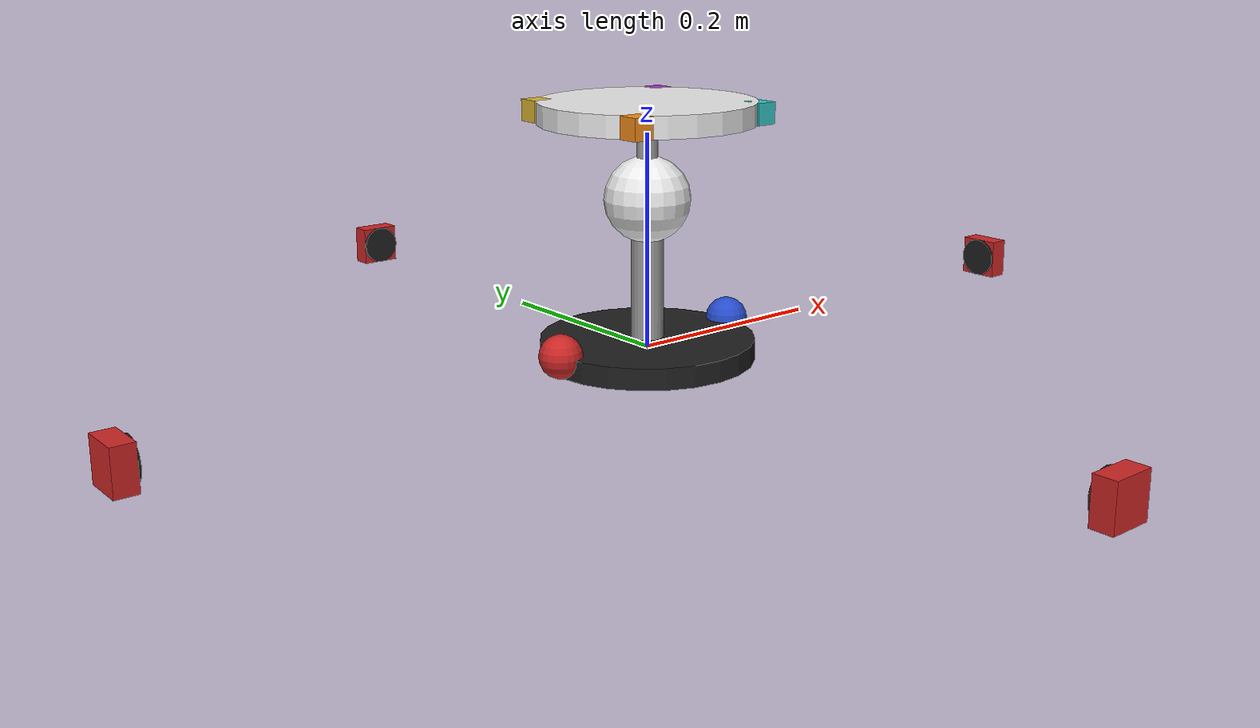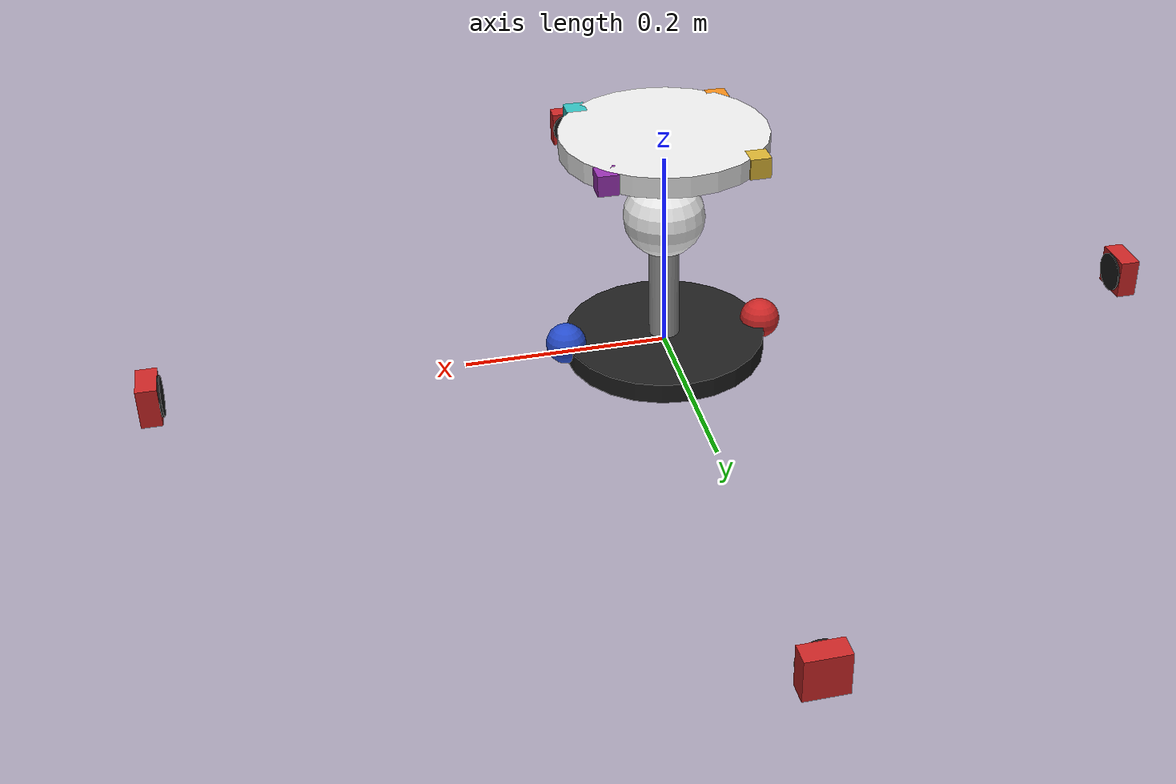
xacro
<?xml version="1.0" ?>

<robot name="cable_joint" xmlns:xacro="https://www.ros.org/wiki/xacro" >

    <!-- Constants for robot dimensions -->
    <xacro:property name="PI" value="3.1415926535897931"/>
    <xacro:property name="EPSILON" value="1e-8"/>
    <!-- properties of link_base -->
    <xacro:property name="R_BASE" value="0.1"/>
    <xacro:property name="L_BASE" value="0.02"/>
    <xacro:property name="M_BASE" value="10"/>
    <!-- properties of link_camera_body -->
    <xacro:property name="L_CAMBODY" value="0.02"/>
    <xacro:property name="M_CAMBODY" value="0.1"/>
    <!-- properties of link_lens_body -->
    <xacro:property name="R_LENS" value="0.02"/>
    <xacro:property name="L_LENS" value="0.002"/>
    <xacro:property name="M_LENS" value="0.01"/>
    <!-- properties of link_pin's -->
    <xacro:property name="R_PIN" value="0.02"/>
    <xacro:property name="M_PIN" value="1"/>
    <!-- properties of link_lowerSupport -->
    <xacro:property name="R_LOWSUPPORT" value="0.015"/>
    <xacro:property name="L_LOWSUPPORT" value="0.14"/>
    <xacro:property name="M_LOWSUPPORT" value="1"/>
    <!-- properties of link_hiddenLink -->
    <xacro:property name="R_HIDLINK" value="0.000001"/>
    <xacro:property name="L_HIDLINK" value="0.000004"/>
    <xacro:property name="M_HIDLINK" value="0.00001"/>
    <!-- properties of link_ball -->
    <xacro:property name="R_BALL" value="0.04"/>
    <xacro:property name="M_BALL" value="1"/>
    <!-- properties of link_upperSupport -->
    <xacro:property name="R_UPPSUPPORT" value="0.01"/>
    <xacro:property name="L_UPPSUPPORT" value="0.08"/>
    <xacro:property name="M_UPPSUPPORT" value="0.1"/>
    <!-- properties of link_disc -->
    <xacro:property name="R_DISC" value="0.1"/>
    <xacro:property name="L_DISC" value="0.02"/>
    <xacro:property name="M_DISC" value="0.1"/>
    <!-- properties of link_cube's -->
    <xacro:property name="L_CUBE" value="0.02"/>
    <xacro:property name="M_CUBE" value="0.001"/>

    <!-- Import all Gazebo-customization elements, including Gazebo colors -->
    <xacro:include filename="$(find cable_joint_description)/urdf/cable_joint.gazebo" />
    <!-- Import Rviz colors -->
    <xacro:include filename="$(find cable_joint_description)/urdf/materials.xacro" />

    <!-- Used for fixing robot to Gazebo 'base_link' -->
    <link name="world"/>

    <joint name="joint_world_base" type="fixed">
        <parent link="world"/>
        <child link="link_base"/>
    </joint>

    <link name="link_base">
        <visual>
            <origin rpy="0 0 0" xyz="0 0 0"/>
            <geometry>
                <cylinder length="${L_BASE}" radius="${R_BASE}"/>
            </geometry>
        <material name="black"/>
        </visual>
        <collision>
            <origin rpy="0 0 0" xyz="0 0 0"/>
            <geometry>
                <cylinder length="${L_BASE}" radius="${R_BASE}"/>
            </geometry>
        </collision>
        <inertial>
            <mass value="1000"/>
            <origin rpy="0 0 0" xyz="0 0 0"/>
            <inertia ixx="${1/12*M_BASE*(3*R_BASE*R_BASE+L_BASE*L_BASE)}" ixy="0" ixz="0" iyy="${1/12*M_BASE*(3*R_BASE*R_BASE+L_BASE*L_BASE)}" iyz="0" izz="${1/2*M_BASE*R_BASE*R_BASE}"/>
        </inertial>
    </link>

    <joint name="joint_world_soucambody" type="revolute">
        <origin rpy="0 0 0" xyz="0 -0.5 ${L_CAMBODY/2}"/>
        <parent link="world"/>
        <child link="link_southCameraBody"/>
        <limit effort="0" lower="0" upper="0" velocity="0"/>
        <axis rpy="0 0 0" xyz="0 0 1"/>
    </joint>

    <link name="link_southCameraBody">
        <visual>
            <origin rpy="0 0 0" xyz="0 0 0"/>
            <geometry>
                <box size="${L_CAMBODY*2} ${L_CAMBODY} ${L_CAMBODY*2}"/>
            </geometry>
            <material name="red"/>
        </visual>
        <collision>
            <origin rpy="0 0 0" xyz="0 0 0"/>
            <geometry>
                <box size="${L_CAMBODY*2} ${L_CAMBODY} ${L_CAMBODY*2}"/>
            </geometry>
        </collision>
        <inertial>
            <mass value="${M_CAMBODY}"/>
            <origin rpy="0 0 0" xyz="0 0 0"/>
            <inertia ixx="${1/12*M_CAMBODY*(L_CAMBODY*L_CAMBODY+L_CAMBODY*L_CAMBODY*4)}" ixy="0" ixz="0" iyy="${1/12*M_CAMBODY*(L_CAMBODY*L_CAMBODY*4+L_CAMBODY*L_CAMBODY*4)}" iyz="0" izz="${1/12*M_CAMBODY*(L_CAMBODY*L_CAMBODY*4+L_CAMBODY*L_CAMBODY)}"/>
        </inertial>
    </link>

    <joint name="joint_soucambody_soulens" type="revolute">
        <origin rpy="0 0 0" xyz="0 ${L_CAMBODY/2+L_LENS/2} 0"/>
        <parent link="link_southCameraBody"/>
        <child link="link_southLens"/>
        <limit effort="0" lower="0" upper="0" velocity="0"/>
        <axis rpy="0 0 0" xyz="0 0 1"/>
    </joint>

    <link name="link_southLens">
        <visual>
            <origin rpy="${PI/2} 0 0" xyz="0 0 0"/>
            <geometry>
                <cylinder length="${L_LENS}" radius="${R_LENS}"/>
            </geometry>
            <material name="black"/>
        </visual>
        <collision>
            <origin rpy="${PI/2} 0 0" xyz="0 0 0"/>
            <geometry>
                <cylinder length="${L_LENS}" radius="${R_LENS}"/>
            </geometry>
        </collision>
        <inertial>
            <mass value="${M_LENS}"/>
            <origin rpy="${PI/2} 0 0" xyz="0 0 0"/>
            <inertia ixx="${1/12*M_LENS*(3*R_LENS*R_LENS+L_LENS*L_LENS)}" ixy="0" ixz="0" iyy="${1/12*M_LENS*(3*R_LENS*R_LENS+L_LENS*L_LENS)}" iyz="0" izz="${1/2*M_LENS*R_LENS*R_LENS}"/>
        </inertial>
    </link>
    <!-- rotate optical link, x axis should be pointing to the view-->
    <joint name="joint_soulens_souopt" type="fixed">
      <origin xyz="0 0 0" rpy="0 0 ${PI/2}"/>
      <parent link="link_southLens"/>
      <child link="link_southOptical"/>
    </joint>
    <link name="link_southOptical">
    </link>

    <joint name="joint_world_wescambody" type="revolute">
        <origin rpy="0 0 0" xyz="-0.5 0 ${L_CAMBODY/2}"/>
        <parent link="world"/>
        <child link="link_westCameraBody"/>
        <limit effort="0" lower="0" upper="0" velocity="0"/>
        <axis rpy="0 0 0" xyz="0 0 1"/>
    </joint>

    <link name="link_westCameraBody">
        <visual>
            <origin rpy="0 0 0" xyz="0 0 0"/>
            <geometry>
                <box size="${L_CAMBODY} ${L_CAMBODY*2} ${L_CAMBODY*2}"/>
            </geometry>
            <material name="red"/>
        </visual>
        <collision>
            <origin rpy="0 0 0" xyz="0 0 0"/>
            <geometry>
                <box size="${L_CAMBODY} ${L_CAMBODY*2} ${L_CAMBODY*2}"/>
            </geometry>
        </collision>
        <inertial>
            <mass value="${M_CAMBODY}"/>
            <origin rpy="0 0 0" xyz="0 0 0"/>
            <inertia ixx="${1/12*M_CAMBODY*(L_CAMBODY*L_CAMBODY*4+L_CAMBODY*L_CAMBODY*4)}" ixy="0" ixz="0" iyy="${1/12*M_CAMBODY*(L_CAMBODY*L_CAMBODY+L_CAMBODY*L_CAMBODY*4)}" iyz="0" izz="${1/12*M_CAMBODY*(L_CAMBODY*L_CAMBODY*4+L_CAMBODY*L_CAMBODY)}"/>
        </inertial>
    </link>

    <joint name="joint_wescambody_weslens" type="revolute">
        <origin rpy="0 0 0" xyz="${L_CAMBODY/2+L_LENS/2} 0 0"/>
        <parent link="link_westCameraBody"/>
        <child link="link_westLens"/>
        <limit effort="0" lower="0" upper="0" velocity="0"/>
        <axis rpy="0 0 0" xyz="0 0 1"/>
    </joint>

    <link name="link_westLens">
        <visual>
            <origin rpy="0 ${PI/2} 0" xyz="0 0 0"/>
            <geometry>
                <cylinder length="${L_LENS}" radius="${R_LENS}"/>
            </geometry>
            <material name="black"/>
        </visual>
        <collision>
            <origin rpy="0 ${PI/2} 0" xyz="0 0 0"/>
            <geometry>
                <cylinder length="${L_LENS}" radius="${R_LENS}"/>
            </geometry>
        </collision>
        <inertial>
            <mass value="${M_LENS}"/>
            <origin rpy="0 ${PI/2} 0" xyz="0 0 0"/>
            <inertia ixx="${1/12*M_LENS*(3*R_LENS*R_LENS+L_LENS*L_LENS)}" ixy="0" ixz="0" iyy="${1/12*M_LENS*(3*R_LENS*R_LENS+L_LENS*L_LENS)}" iyz="0" izz="${1/2*M_LENS*R_LENS*R_LENS}"/>
        </inertial>
    </link>
    <!-- rotate west optical link, x axis should be pointing to the view-->
    <joint name="joint_weslens_wesopt" type="fixed">
      <origin xyz="0 0 0" rpy="0 0 0"/>
      <parent link="link_westLens"/>
      <child link="link_westOptical"/>
    </joint>
    <link name="link_westOptical">
    </link>

    <joint name="joint_world_norcambody" type="revolute">
        <origin rpy="0 0 0" xyz="0 0.5 ${L_CAMBODY/2}"/>
        <parent link="world"/>
        <child link="link_northCameraBody"/>
        <limit effort="0" lower="0" upper="0" velocity="0"/>
        <axis rpy="0 0 0" xyz="0 0 1"/>
    </joint>

    <link name="link_northCameraBody">
        <visual>
            <origin rpy="0 0 0" xyz="0 0 0"/>
            <geometry>
                <box size="${L_CAMBODY*2} ${L_CAMBODY} ${L_CAMBODY*2}"/>
            </geometry>
            <material name="red"/>
        </visual>
        <collision>
            <origin rpy="0 0 0" xyz="0 0 0"/>
            <geometry>
                <box size="${L_CAMBODY*2} ${L_CAMBODY} ${L_CAMBODY*2}"/>
            </geometry>
        </collision>
        <inertial>
            <mass value="${M_CAMBODY}"/>
            <origin rpy="0 0 0" xyz="0 0 0"/>
            <inertia ixx="${1/12*M_CAMBODY*(L_CAMBODY*L_CAMBODY+L_CAMBODY*L_CAMBODY*4)}" ixy="0" ixz="0" iyy="${1/12*M_CAMBODY*(L_CAMBODY*L_CAMBODY*4+L_CAMBODY*L_CAMBODY*4)}" iyz="0" izz="${1/12*M_CAMBODY*(L_CAMBODY*L_CAMBODY*4+L_CAMBODY*L_CAMBODY)}"/>
        </inertial>
    </link>

    <joint name="joint_norcambody_norlens" type="revolute">
        <origin rpy="0 0 0" xyz="0 -${L_CAMBODY/2+L_LENS/2} 0"/>
        <parent link="link_northCameraBody"/>
        <child link="link_northLens"/>
        <limit effort="0" lower="0" upper="0" velocity="0"/>
        <axis rpy="0 0 0" xyz="0 0 1"/>
    </joint>

    <link name="link_northLens">
        <visual>
            <origin rpy="${PI/2} 0 0" xyz="0 0 0"/>
            <geometry>
                <cylinder length="${L_LENS}" radius="${R_LENS}"/>
            </geometry>
            <material name="black"/>
        </visual>
        <collision>
            <origin rpy="${PI/2} 0 0" xyz="0 0 0"/>
            <geometry>
                <cylinder length="${L_LENS}" radius="${R_LENS}"/>
            </geometry>
        </collision>
        <inertial>
            <mass value="${M_LENS}"/>
            <origin rpy="${PI/2} 0 0" xyz="0 0 0"/>
            <inertia ixx="${1/12*M_LENS*(3*R_LENS*R_LENS+L_LENS*L_LENS)}" ixy="0" ixz="0" iyy="${1/12*M_LENS*(3*R_LENS*R_LENS+L_LENS*L_LENS)}" iyz="0" izz="${1/2*M_LENS*R_LENS*R_LENS}"/>
        </inertial>
    </link>
    <!-- rotate optical link, x axis should be pointing to the view-->
    <joint name="joint_norlens_noropt" type="fixed">
      <origin xyz="0 0 0" rpy="0 0 -${PI/2}"/>
      <parent link="link_northLens"/>
      <child link="link_northOptical"/>
    </joint>
    <link name="link_northOptical">
    </link>

    <joint name="joint_world_eascambody" type="revolute">
        <origin rpy="0 0 0" xyz="0.5 0 ${L_CAMBODY/2}"/>
        <parent link="world"/>
        <child link="link_eastCameraBody"/>
        <limit effort="0" lower="0" upper="0" velocity="0"/>
        <axis rpy="0 0 0" xyz="0 0 1"/>
    </joint>

    <link name="link_eastCameraBody">
        <visual>
            <origin rpy="0 0 0" xyz="0 0 0"/>
            <geometry>
                <box size="${L_CAMBODY} ${L_CAMBODY*2} ${L_CAMBODY*2}"/>
            </geometry>
            <material name="red"/>
        </visual>
        <collision>
            <origin rpy="0 0 0" xyz="0 0 0"/>
            <geometry>
                <box size="${L_CAMBODY} ${L_CAMBODY*2} ${L_CAMBODY*2}"/>
            </geometry>
        </collision>
        <inertial>
            <mass value="${M_CAMBODY}"/>
            <origin rpy="0 0 0" xyz="0 0 0"/>
            <inertia ixx="${1/12*M_CAMBODY*(L_CAMBODY*L_CAMBODY*4+L_CAMBODY*L_CAMBODY*4)}" ixy="0" ixz="0" iyy="${1/12*M_CAMBODY*(L_CAMBODY*L_CAMBODY+L_CAMBODY*L_CAMBODY*4)}" iyz="0" izz="${1/12*M_CAMBODY*(L_CAMBODY*L_CAMBODY*4+L_CAMBODY*L_CAMBODY)}"/>
        </inertial>
    </link>

    <joint name="joint_eascambody_easlens" type="revolute">
        <origin rpy="0 0 0" xyz="-${L_CAMBODY/2+L_LENS/2} 0 0"/>
        <parent link="link_eastCameraBody"/>
        <child link="link_eastLens"/>
        <limit effort="0" lower="0" upper="0" velocity="0"/>
        <axis rpy="0 0 0" xyz="0 0 1"/>
    </joint>

    <link name="link_eastLens">
        <visual>
            <origin rpy="0 ${PI/2} 0" xyz="0 0 0"/>
            <geometry>
                <cylinder length="${L_LENS}" radius="${R_LENS}"/>
            </geometry>
            <material name="black"/>
        </visual>
        <collision>
            <origin rpy="0 ${PI/2} 0" xyz="0 0 0"/>
            <geometry>
                <cylinder length="${L_LENS}" radius="${R_LENS}"/>
            </geometry>
        </collision>
        <inertial>
            <mass value="${M_LENS}"/>
            <origin rpy="0 ${PI/2} 0" xyz="0 0 0"/>
            <inertia ixx="${1/12*M_LENS*(3*R_LENS*R_LENS+L_LENS*L_LENS)}" ixy="0" ixz="0" iyy="${1/12*M_LENS*(3*R_LENS*R_LENS+L_LENS*L_LENS)}" iyz="0" izz="${1/2*M_LENS*R_LENS*R_LENS}"/>
        </inertial>
    </link>
    <!-- rotate east optical link, x axis should be pointing to the view-->
    <joint name="joint_easlens_easopt" type="fixed">
      <origin xyz="0 0 0" rpy="0 0 ${PI}"/>
      <parent link="link_eastLens"/>
      <child link="link_eastOptical"/>
    </joint>
    <link name="link_eastOptical">
    </link>

    <joint name="joint_base_eastpin" type="revolute">
        <parent link="link_base"/>
        <child link="link_eastPin"/>
        <origin rpy="0 0 0" xyz="${R_BASE} 0 ${L_BASE/2}"/>
        <limit effort="0" lower="0" upper="0" velocity="0"/>
        <axis rpy="0 0 0" xyz="0 0 1"/>
    </joint>

    <link name="link_eastPin">
        <visual>
            <origin rpy="0 0 0" xyz="0 0 0"/>
            <geometry>
                <sphere radius="${R_PIN}"/>
            </geometry>
            <material name="blue"/>
        </visual>
        <collision>
            <origin rpy="0 0 0" xyz="0 0 0"/>
            <geometry>
                <sphere radius="${R_PIN}"/>
            </geometry>
        </collision>
        <inertial>
            <mass value="${M_PIN}"/>
            <origin rpy="0 0 0" xyz="0 0 0"/>
            <inertia ixx="${2/5*M_PIN*R_PIN*R_PIN}" ixy="0" ixz="0" iyy="${2/5*M_PIN*R_PIN*R_PIN}" iyz="0" izz="${2/5*M_PIN*R_PIN*R_PIN}"/>
        </inertial>
    </link>

    <joint name="joint_base_westpin" type="revolute">
        <parent link="link_base"/>
        <child link="link_westPin"/>
        <origin rpy="0 0 0" xyz="${-R_BASE} 0 ${L_BASE/2}"/>
        <limit effort="0" lower="0" upper="0" velocity="0"/>
        <axis rpy="0 0 0" xyz="0 0 1"/>
    </joint>

    <link name="link_westPin">
        <visual>
            <origin rpy="0 0 0" xyz="0 0 0"/>
            <geometry>
                <sphere radius="${R_PIN}"/>
            </geometry>
            <material name="red"/>
        </visual>
        <collision>
            <origin rpy="0 0 0" xyz="0 0 0"/>
            <geometry>
                <sphere radius="${R_PIN}"/>
            </geometry>
        </collision>
        <inertial>
            <mass value="${M_PIN}"/>
            <origin rpy="0 0 0" xyz="0 0 0"/>
            <inertia ixx="${2/5*M_PIN*R_PIN*R_PIN}" ixy="0" ixz="0" iyy="${2/5*M_PIN*R_PIN*R_PIN}" iyz="0" izz="${2/5*M_PIN*R_PIN*R_PIN}"/>
        </inertial>
    </link>

    <joint name="joint_base_lowersupport" type="revolute">
        <origin rpy="0 0 0" xyz="0 0 0"/>
        <limit effort="0" lower="0" upper="0" velocity="0"/>
        <axis rpy="0 0 0" xyz="0 0 1"/>
        <parent link="link_base"/>
        <child link="link_lowerSupport"/>
        <origin rpy="0 0 0" xyz="0 0 0.01"/>
    </joint>

    <link name="link_lowerSupport">
        <visual>
            <origin rpy="0 0 0" xyz="0 0 0.07"/>
            <geometry>
                <cylinder length="${L_LOWSUPPORT}" radius="${R_LOWSUPPORT}"/>
            </geometry>
            <material name="grey"/>
        </visual>
        <collision>
            <origin rpy="0 0 0" xyz="0 0 0.07"/>
            <geometry>
                <cylinder length="${L_LOWSUPPORT}" radius="${R_LOWSUPPORT}"/>
            </geometry>
        </collision>
        <inertial>
            <mass value="${M_LOWSUPPORT}"/>
            <origin rpy="0 0 0" xyz="0 0 0"/>
            <inertia ixx="${1/12*M_LOWSUPPORT*(3*R_LOWSUPPORT*R_LOWSUPPORT+L_LOWSUPPORT*L_LOWSUPPORT)}" ixy="0" ixz="0" iyy="${1/12*M_LOWSUPPORT*(3*R_LOWSUPPORT*R_LOWSUPPORT+L_LOWSUPPORT*L_LOWSUPPORT)}" iyz="0" izz="${1/2*M_LOWSUPPORT*R_LOWSUPPORT*R_LOWSUPPORT}"/>
        </inertial>
    </link>

    <joint name="joint_lowersupport_hiddenlinkroll" type="revolute">
        <parent link="link_lowerSupport"/>
        <child link="link_hiddenLinkRoll"/>
        <origin rpy="0 0 0" xyz="0 0 ${L_LOWSUPPORT}"/>
        <axis xyz="1 0 0"/>
        <limit effort="10" velocity="${PI*2}" lower="${-PI+EPSILON}" upper="${PI-EPSILON}"/>
    </joint>

    <link name="link_hiddenLinkRoll">
        <visual>
            <origin rpy="${PI/2} 0 0" xyz="0 0 0"/>
            <geometry>
                <cylinder length="${L_HIDLINK}" radius="${R_HIDLINK}"/>
            </geometry>
            <material name="white"/>
        </visual>
        <collision>
            <origin rpy="${PI/2} 0 0" xyz="0 0 0"/>
            <geometry>
                <cylinder length="${L_HIDLINK}" radius="${R_HIDLINK}"/>
            </geometry>
        </collision>
        <inertial>
            <mass value="${M_HIDLINK}"/>
            <origin rpy="${PI/2} 0 0" xyz="0 0 0"/>
            <inertia ixx="${1/12*M_HIDLINK*(3*R_HIDLINK*R_HIDLINK+L_HIDLINK*L_HIDLINK)}" ixy="0" ixz="0" iyy="${1/12*M_HIDLINK*(3*R_HIDLINK*R_HIDLINK+L_HIDLINK*L_HIDLINK)}" iyz="0" izz="${1/2*M_HIDLINK*R_HIDLINK*R_HIDLINK}"/>
        </inertial>
    </link>

    <joint name="joint_hiddenlinkroll_hiddenlinkpitch" type="revolute">
        <parent link="link_hiddenLinkRoll"/>
        <child link="link_hiddenLinkPitch"/>
        <origin rpy="0 0 0" xyz="0 0 ${R_HIDLINK}"/>
        <axis xyz="0 1 0"/>
        <limit effort="10" velocity="${PI*2}" lower="${-PI+EPSILON}" upper="${PI-EPSILON}"/>
    </joint>

    <link name="link_hiddenLinkPitch">
        <visual>
            <origin rpy="0 ${PI/2} 0" xyz="0 0 0"/>
            <geometry>
                <cylinder length="${L_HIDLINK}" radius="${R_HIDLINK}"/>
            </geometry>
            <material name="white"/>
        </visual>
        <collision>
            <origin rpy="0 ${PI/2} 0" xyz="0 0 0"/>
            <geometry>
                <cylinder length="${L_HIDLINK}" radius="${R_HIDLINK}"/>
            </geometry>
        </collision>
        <inertial>
            <mass value="${M_HIDLINK}"/>
            <origin rpy="0 ${PI/2} 0" xyz="0 0 0"/>
            <inertia ixx="${1/12*M_HIDLINK*(3*R_HIDLINK*R_HIDLINK+L_HIDLINK*L_HIDLINK)}" ixy="0" ixz="0" iyy="${1/12*M_HIDLINK*(3*R_HIDLINK*R_HIDLINK+L_HIDLINK*L_HIDLINK)}" iyz="0" izz="${1/2*M_HIDLINK*R_HIDLINK*R_HIDLINK}"/>
        </inertial>
    </link>

    <joint name="joint_hiddenlinkpitch_ball" type="revolute">
        <parent link="link_hiddenLinkPitch"/>
        <child link="link_ball"/>
        <origin rpy="0 0 0" xyz="0 0 ${R_HIDLINK}"/>
        <axis xyz="0 0 1"/>
        <limit effort="10" velocity="${PI*2}" lower="${-PI+EPSILON}" upper="${PI-EPSILON}"/>
    </joint>

    <link name="link_ball">
        <visual>
            <origin rpy="0 0 ${PI/2}" xyz="0 0 0"/>
            <geometry>
                <sphere radius="${R_BALL}"/>
            </geometry>
            <material name="white"/>
        </visual>
        <collision>
            <origin rpy="0 0 ${PI/2}" xyz="0 0 0"/>
            <geometry>
                <sphere radius="${R_BALL}"/>
            </geometry>
        </collision>
        <inertial>
            <mass value="${M_BALL}"/>
            <origin rpy="0 0 ${PI/2}" xyz="0 0 0"/>
            <inertia ixx="${2/5*M_BALL*R_BALL*R_BALL}" ixy="0" ixz="0" iyy="${2/5*M_BALL*R_BALL*R_BALL}" iyz="0" izz="${2/5*M_BALL*R_BALL*R_BALL}"/>
        </inertial>
    </link>

    <joint name="joint_ball_uppersupport" type="revolute">
          <origin rpy="0 0 0" xyz="0 0 ${R_BALL}"/>
          <limit effort="0" lower="0" upper="0" velocity="0"/>
          <axis xyz="0 0 1"/>
          <parent link="link_ball"/>
          <child link="link_upperSupport"/>
    </joint>

    <link name="link_upperSupport">
        <visual>
            <origin rpy="0 0 0" xyz="0 0 0"/>
            <geometry>
                <cylinder length="${L_UPPSUPPORT}" radius="${R_UPPSUPPORT}"/>
            </geometry>
            <material name="grey"/>
        </visual>
    <collision>
        <origin rpy="0 0 0" xyz="0 0 0"/>
        <geometry>
            <cylinder length="${L_UPPSUPPORT}" radius="${R_UPPSUPPORT}"/>
        </geometry>
    </collision>
    <inertial>
        <mass value="${M_UPPSUPPORT}"/>
        <origin rpy="0 0 0" xyz="0 0 0"/>
        <inertia ixx="${1/12*M_UPPSUPPORT*(3*R_UPPSUPPORT*R_UPPSUPPORT+L_UPPSUPPORT*L_UPPSUPPORT)}" ixy="0" ixz="0" iyy="${1/12*M_UPPSUPPORT*(3*R_UPPSUPPORT*R_UPPSUPPORT+L_UPPSUPPORT*L_UPPSUPPORT)}" iyz="0" izz="${1/2*M_UPPSUPPORT*R_UPPSUPPORT*R_UPPSUPPORT}"/>
      </inertial>
    </link>

    <joint name="joint_uppersupport_disc" type="revolute">
          <origin rpy="0 0 0" xyz="0 0 ${L_UPPSUPPORT/2}"/>
          <limit effort="0" lower="0" upper="0" velocity="0"/>
          <axis xyz="0 0 1"/>
          <parent link="link_upperSupport"/>
          <child link="link_disc"/>
    </joint>

    <link name="link_disc">
        <visual>
            <origin rpy="0 0 0" xyz="0 0 0"/>
            <geometry>
                <cylinder length="${L_DISC}" radius="${R_DISC}"/>
              </geometry>
              <material name="white"/>
        </visual>
        <collision>
            <origin rpy="0 0 0" xyz="0 0 0"/>
            <geometry>
                <cylinder length="${L_DISC}" radius="${R_DISC}"/>
            </geometry>
        </collision>
        <inertial>
            <mass value="${M_DISC}"/>
            <origin rpy="0 0 0" xyz="0 0 0"/>
            <inertia ixx="${1/12*M_DISC*(3*R_DISC*R_DISC+L_DISC*L_DISC)}" ixy="0" ixz="0" iyy="${1/12*M_DISC*(3*R_DISC*R_DISC+L_DISC*L_DISC)}" iyz="0" izz="${1/2*M_DISC*R_DISC*R_DISC}"/>
        </inertial>
    </link>

    <joint name="joint_disc_necube" type="revolute">
          <parent link="link_disc"/>
          <child link="link_northeastCube"/>
          <origin rpy="0 0 0" xyz="0.0707 0.0707 0"/>
          <limit effort="0" lower="0" upper="0" velocity="0"/>
          <axis rpy="0 0 0" xyz="0 0 1"/>
    </joint>

    <link name="link_northeastCube">
        <visual>
            <origin rpy="0 0 0" xyz="0 0 0"/>
            <geometry>
                <box size="${L_CUBE} ${L_CUBE} ${L_CUBE}" />
            </geometry>
            <material name="purple"/>
        </visual>
        <collision>
            <origin rpy="0 0 0" xyz="0 0 0"/>
            <geometry>
                <box size="${L_CUBE} ${L_CUBE} ${L_CUBE}"/>
            </geometry>
        </collision>
        <inertial>
            <mass value="${M_CUBE}"/>
            <origin rpy="0 0 0" xyz="0 0 0"/>
            <inertia ixx="${1/12*M_CUBE*(L_CUBE*L_CUBE+L_CUBE*L_CUBE)}" ixy="0" ixz="0" iyy="${1/12*M_CUBE*(L_CUBE*L_CUBE+L_CUBE*L_CUBE)}" iyz="0" izz="${1/12*M_CUBE*(L_CUBE*L_CUBE+L_CUBE*L_CUBE)}"/>
      </inertial>
    </link>

    <joint name="joint_disc_nwcube" type="revolute">
          <parent link="link_disc"/>
          <child link="link_northwestCube"/>
          <origin rpy="0 0 0" xyz="-0.0707 0.0707 0"/>
          <limit effort="0" lower="0" upper="0" velocity="0"/>
          <axis rpy="0 0 0" xyz="0 0 1"/>
    </joint>

    <link name="link_northwestCube">
        <visual>
            <origin rpy="0 0 0" xyz="0 0 0"/>
            <geometry>
                <box size="${L_CUBE} ${L_CUBE} ${L_CUBE}" />
            </geometry>
            <material name="seance"/>
        </visual>
        <collision>
            <origin rpy="0 0 0" xyz="0 0 0"/>
            <geometry>
                <box size="${L_CUBE} ${L_CUBE} ${L_CUBE}"/>
            </geometry>
        </collision>
        <inertial>
            <mass value="${M_CUBE}"/>
            <origin rpy="0 0 0" xyz="0 0 0"/>
            <inertia ixx="${1/12*M_CUBE*(L_CUBE*L_CUBE+L_CUBE*L_CUBE)}" ixy="0" ixz="0" iyy="${1/12*M_CUBE*(L_CUBE*L_CUBE+L_CUBE*L_CUBE)}" iyz="0" izz="${1/12*M_CUBE*(L_CUBE*L_CUBE+L_CUBE*L_CUBE)}"/>
      </inertial>
    </link>

    <joint name="joint_disc_swcube" type="revolute">
          <parent link="link_disc"/>
          <child link="link_southwestCube"/>
          <origin rpy="0 0 0" xyz="-0.0707 -0.0707 0"/>
          <limit effort="0" lower="0" upper="0" velocity="0"/>
          <axis rpy="0 0 0" xyz="0 0 1"/>
    </joint>

    <link name="link_southwestCube">
        <visual>
            <origin rpy="0 0 0" xyz="0 0 0"/>
            <geometry>
                <box size="${L_CUBE} ${L_CUBE} ${L_CUBE}" />
            </geometry>
            <material name="orange"/>
        </visual>
        <collision>
            <origin rpy="0 0 0" xyz="0 0 0"/>
            <geometry>
                <box size="${L_CUBE} ${L_CUBE} ${L_CUBE}"/>
            </geometry>
        </collision>
        <inertial>
            <mass value="${M_CUBE}"/>
            <origin rpy="0 0 0" xyz="0 0 0"/>
            <inertia ixx="${1/12*M_CUBE*(L_CUBE*L_CUBE+L_CUBE*L_CUBE)}" ixy="0" ixz="0" iyy="${1/12*M_CUBE*(L_CUBE*L_CUBE+L_CUBE*L_CUBE)}" iyz="0" izz="${1/12*M_CUBE*(L_CUBE*L_CUBE+L_CUBE*L_CUBE)}"/>
      </inertial>
    </link>

    <joint name="joint_disc_secube" type="revolute">
          <parent link="link_disc"/>
          <child link="link_southeastCube"/>
          <origin rpy="0 0 0" xyz="0.0707 -0.0707 0"/>
          <limit effort="0" lower="0" upper="0" velocity="0"/>
          <axis rpy="0 0 0" xyz="0 0 1"/>
    </joint>

    <link name="link_southeastCube">
        <visual>
            <origin rpy="0 0 0" xyz="0 0 0"/>
            <geometry>
                <box size="${L_CUBE} ${L_CUBE} ${L_CUBE}" />
            </geometry>
            <material name="sky"/>
        </visual>
        <collision>
            <origin rpy="0 0 0" xyz="0 0 0"/>
            <geometry>
                <box size="${L_CUBE} ${L_CUBE} ${L_CUBE}"/>
            </geometry>
        </collision>
        <inertial>
            <mass value="${M_CUBE}"/>
            <origin rpy="0 0 0" xyz="0 0 0"/>
            <inertia ixx="${1/12*M_CUBE*(L_CUBE*L_CUBE+L_CUBE*L_CUBE)}" ixy="0" ixz="0" iyy="${1/12*M_CUBE*(L_CUBE*L_CUBE+L_CUBE*L_CUBE)}" iyz="0" izz="${1/12*M_CUBE*(L_CUBE*L_CUBE+L_CUBE*L_CUBE)}"/>
      </inertial>
    </link>

</robot>
